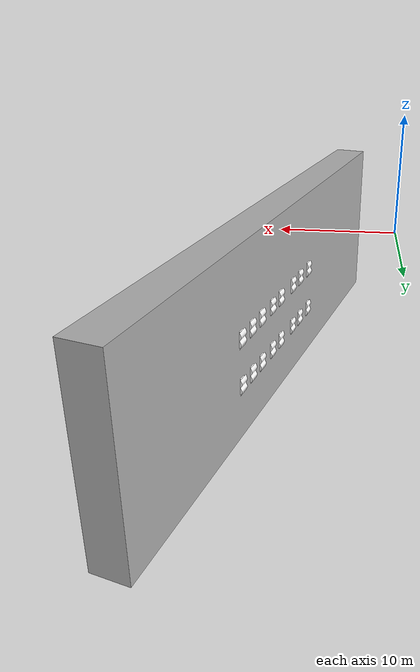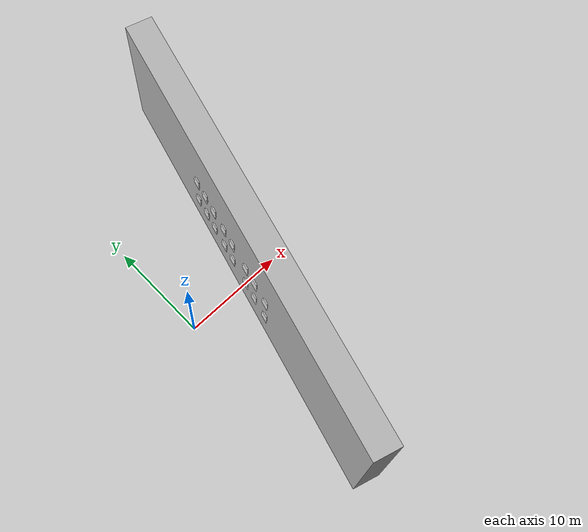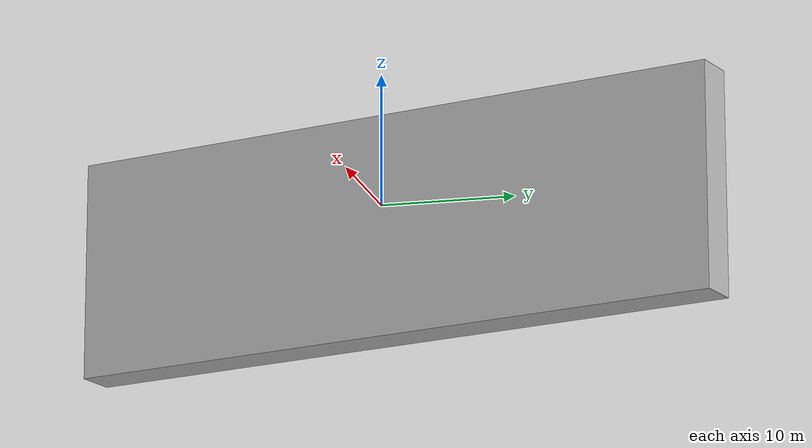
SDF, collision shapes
<?xml version="1.0" ?>
<!--Luis Blunschi 27.10.2025-->
<sdf version="1.6">
  <model name="harbor">
    <static>true</static>

    <link name="walls">

      <collision name="front_wall_collision">
        <pose>10.722990 3.746699 -5 0 0 -1.844678</pose>
        <geometry>
          <box>
            <size>50 3 16</size>
          </box>
        </geometry>
      </collision>
      <visual name="front_wall_visual">
        <pose>10.722990 3.746699 -5 0 0 -1.844678</pose>
        <geometry>
          <box>
            <size>50 2.98 16</size>
          </box>
        </geometry>
        <material>
          <ambient>0.7 0.7 0.7 1</ambient>
          <diffuse>0.7 0.7 0.7 1</diffuse>
        </material>
      </visual>

      <visual name="front_wall_texture">
        <pose>9.327034 4.138881 -5 0 0 -1.844678</pose>
        <geometry>
          <mesh>
            <uri>model://harbor/meshes/wall_visual.obj</uri>
          </mesh>
        </geometry>
        <material>
          <double_sided>true</double_sided>
          <ambient>1 1 1 1</ambient>
          <diffuse>1 1 1 1</diffuse>
          <specular>0.1 0.1 0.1 0.1</specular>
          <pbr>
            <metal>
              <albedo_map>model://harbor/materials/grass/Poliigon_GrassPatchyGround_4585_BaseColor.jpg</albedo_map>
              <normal_map>model://harbor/materials/grass/Poliigon_GrassPatchyGround_4585_Normal.png</normal_map>
              <roughness_map>model://harbor/materials/grass/Poliigon_GrassPatchyGround_4585_Roughness.jpg</roughness_map>
              <metalness_map>model://harbor/materials/grass/Poliigon_GrassPatchyGround_4585_Metallic.jpg</metalness_map>
              <ambient_occlusion_map>model://harbor/materials/grass/Poliigon_GrassPatchyGround_4585_AmbientOcclusion.jpg</ambient_occlusion_map>
              <roughness>0.9</roughness>
              <metalness>0.01</metalness>
            </metal>
          </pbr>
        </material>
      </visual>

    </link>
    <link name="inspection_elements">

      <!-- Element LBU 5.8 -->
      <collision name="inspection_element_58_collision">
        <pose>11.835702 13.253233 -5.000025 0 0 2.867711</pose>
        <geometry>
          <mesh>
            <uri>model://harbor/meshes/model.stl</uri>
            <scale>0.001 0.001 0.001</scale>
          </mesh>
        </geometry>
      </collision>
      <visual name="inspection_element_58_visual">
        <pose>11.835702 13.253233 -5.000025 1.5707 0 2.867711</pose>
        <geometry>
          <mesh>
            <uri>model://harbor/meshes/inspection.glb</uri>
            <scale>0.01 0.01 0.01</scale>
          </mesh>

        </geometry>
        <material>
          <double_sided>true</double_sided>
          <ambient>1 1 1 1</ambient>
          <diffuse>1 1 1 1</diffuse>
          <specular>0.1 0.1 0.1 0.1</specular>
          <pbr>
            <metal>
              <albedo_map>model://harbor/materials/grid_like/rusting-textured-metal_albedo.png</albedo_map>
              <normal_map>model://harbor/materials/grid_like/rusting-textured-metal_normal-dx.png</normal_map>
              <roughness_map>model://harbor/materials/grid_like/rusting-textured-metal_roughness.png</roughness_map>
              <metalness_map>model://harbor/materials/grid_like/rusting-textured-metal_metallic.png</metalness_map>
              <ambient_occlusion_map>model://harbor/materials/grid_like/rusting-textured-metal_ao.png</ambient_occlusion_map>
              <roughness>0.9</roughness>
              <metalness>0.01</metalness>
            </metal>
          </pbr>
        </material>

      </visual>

      <!-- Element LBU 5.13 -->
      <collision name="inspection_element_513_collision">
        <pose>11.835702 13.253233 -9 0 0 2.867711</pose>
        <geometry>
          <mesh>
            <uri>model://harbor/meshes/model.stl</uri>
            <scale>0.001 0.001 0.001</scale>
          </mesh>
        </geometry>
      </collision>
      <visual name="inspection_element_513_visual">
        <pose>11.835702 13.253233 -9 1.5707 0 2.867711</pose>
        <geometry>
          <mesh>
            <uri>model://harbor/meshes/inspection.glb</uri>
            <scale>0.01 0.01 0.01</scale>
          </mesh>

        </geometry>
        <material>
          <double_sided>true</double_sided>
          <ambient>1 1 1 1</ambient>
          <diffuse>1 1 1 1</diffuse>
          <specular>0.1 0.1 0.1 0.1</specular>
          <pbr>
            <metal>
              <albedo_map>model://harbor/materials/grid_like/rusting-textured-metal_albedo.png</albedo_map>
              <normal_map>model://harbor/materials/grid_like/rusting-textured-metal_normal-dx.png</normal_map>
              <roughness_map>model://harbor/materials/grid_like/rusting-textured-metal_roughness.png</roughness_map>
              <metalness_map>model://harbor/materials/grid_like/rusting-textured-metal_metallic.png</metalness_map>
              <ambient_occlusion_map>model://harbor/materials/grid_like/rusting-textured-metal_ao.png</ambient_occlusion_map>
              <roughness>0.9</roughness>
              <metalness>0.01</metalness>
            </metal>
          </pbr>
        </material>

      </visual>

      <!-- Element LBU 5.9 -->
      <collision name="inspection_element_59_collision">
        <pose>11.319732 11.416660 -5.000025 0 0 2.867711</pose>
        <geometry>
          <mesh>
            <uri>model://harbor/meshes/model.stl</uri>
            <scale>0.001 0.001 0.001</scale>
          </mesh>
        </geometry>
      </collision>
      <visual name="inspection_element_59_visual">
        <pose>11.319732 11.416660 -5.000025 1.5707 0 2.867711</pose>
        <geometry>
          <mesh>
            <uri>model://harbor/meshes/inspection.glb</uri>
            <scale>0.01 0.01 0.01</scale>
          </mesh>

        </geometry>
        <material>
          <double_sided>true</double_sided>
          <ambient>1 1 1 1</ambient>
          <diffuse>1 1 1 1</diffuse>
          <specular>0.1 0.1 0.1 0.1</specular>
          <pbr>
            <metal>
              <albedo_map>model://harbor/materials/grid_like/rusting-textured-metal_albedo.png</albedo_map>
              <normal_map>model://harbor/materials/grid_like/rusting-textured-metal_normal-dx.png</normal_map>
              <roughness_map>model://harbor/materials/grid_like/rusting-textured-metal_roughness.png</roughness_map>
              <metalness_map>model://harbor/materials/grid_like/rusting-textured-metal_metallic.png</metalness_map>
              <ambient_occlusion_map>model://harbor/materials/grid_like/rusting-textured-metal_ao.png</ambient_occlusion_map>
              <roughness>0.9</roughness>
              <metalness>0.01</metalness>
            </metal>
          </pbr>
        </material>
      </visual>

      <!-- Element 5.14 -->
      <collision name="inspection_element_514_collision">
        <pose>11.319732 11.416660 -9 0 0 2.867711</pose>
        <geometry>
          <mesh>
            <uri>model://harbor/meshes/model.stl</uri>
            <scale>0.001 0.001 0.001</scale>
          </mesh>
        </geometry>
      </collision>
      <visual name="inspection_element_514_visual">
        <pose>11.319732 11.416660 -9 1.5707 0 2.867711</pose>
        <geometry>
          <mesh>
            <uri>model://harbor/meshes/inspection.glb</uri>
            <scale>0.01 0.01 0.01</scale>
          </mesh>

        </geometry>
        <material>
          <double_sided>true</double_sided>
          <ambient>1 1 1 1</ambient>
          <diffuse>1 1 1 1</diffuse>
          <specular>0.1 0.1 0.1 0.1</specular>
          <pbr>
            <metal>
              <albedo_map>model://harbor/materials/grid_like/rusting-textured-metal_albedo.png</albedo_map>
              <normal_map>model://harbor/materials/grid_like/rusting-textured-metal_normal-dx.png</normal_map>
              <roughness_map>model://harbor/materials/grid_like/rusting-textured-metal_roughness.png</roughness_map>
              <metalness_map>model://harbor/materials/grid_like/rusting-textured-metal_metallic.png</metalness_map>
              <ambient_occlusion_map>model://harbor/materials/grid_like/rusting-textured-metal_ao.png</ambient_occlusion_map>
              <roughness>0.9</roughness>
              <metalness>0.01</metalness>
            </metal>
          </pbr>
        </material>
      </visual>

      <!-- Element LBU 5.10 -->
      <collision name="inspection_element_510_collision">
        <pose>10.803728 9.579964 -5.000025 0 0 2.867711</pose>
        <geometry>
          <mesh>
            <uri>model://harbor/meshes/model.stl</uri>
            <scale>0.001 0.001 0.001</scale>
          </mesh>
        </geometry>
      </collision>
      <visual name="inspection_element_510_visual">
        <pose>10.803728 9.579964 -5.000025 1.5707 0 2.867711</pose>
        <geometry>
          <mesh>
            <uri>model://harbor/meshes/inspection.glb</uri>
            <scale>0.01 0.01 0.01</scale>
          </mesh>

        </geometry>
        <material>
          <double_sided>true</double_sided>
          <ambient>1 1 1 1</ambient>
          <diffuse>1 1 1 1</diffuse>
          <specular>0.1 0.1 0.1 0.1</specular>
          <pbr>
            <metal>
              <albedo_map>model://harbor/materials/grid_like/rusting-textured-metal_albedo.png</albedo_map>
              <normal_map>model://harbor/materials/grid_like/rusting-textured-metal_normal-dx.png</normal_map>
              <roughness_map>model://harbor/materials/grid_like/rusting-textured-metal_roughness.png</roughness_map>
              <metalness_map>model://harbor/materials/grid_like/rusting-textured-metal_metallic.png</metalness_map>
              <ambient_occlusion_map>model://harbor/materials/grid_like/rusting-textured-metal_ao.png</ambient_occlusion_map>
              <roughness>0.9</roughness>
              <metalness>0.01</metalness>
            </metal>
          </pbr>
        </material>
      </visual>

      <!-- Element 5.15 -->
      <collision name="inspection_element_515_collision">
        <pose>10.803728 9.579964 -9 0 0 2.867711</pose>
        <geometry>
          <mesh>
            <uri>model://harbor/meshes/model.stl</uri>
            <scale>0.001 0.001 0.001</scale>
          </mesh>
        </geometry>
      </collision>
      <visual name="inspection_element_515_visual">
        <pose>10.803728 9.579964 -9 1.5707 0 2.867711</pose>
        <geometry>
          <mesh>
            <uri>model://harbor/meshes/inspection.glb</uri>
            <scale>0.01 0.01 0.01</scale>
          </mesh>

        </geometry>
        <material>
          <double_sided>true</double_sided>
          <ambient>1 1 1 1</ambient>
          <diffuse>1 1 1 1</diffuse>
          <specular>0.1 0.1 0.1 0.1</specular>
          <pbr>
            <metal>
              <albedo_map>model://harbor/materials/grid_like/rusting-textured-metal_albedo.png</albedo_map>
              <normal_map>model://harbor/materials/grid_like/rusting-textured-metal_normal-dx.png</normal_map>
              <roughness_map>model://harbor/materials/grid_like/rusting-textured-metal_roughness.png</roughness_map>
              <metalness_map>model://harbor/materials/grid_like/rusting-textured-metal_metallic.png</metalness_map>
              <ambient_occlusion_map>model://harbor/materials/grid_like/rusting-textured-metal_ao.png</ambient_occlusion_map>
              <roughness>0.9</roughness>
              <metalness>0.01</metalness>
            </metal>
          </pbr>
        </material>
      </visual>

      <!-- Element LBU 5.11 -->
      <collision name="inspection_element_511_collision">
        <pose>10.190416 7.396905 -5.000025 0 0 2.867711</pose>
        <geometry>
          <mesh>
            <uri>model://harbor/meshes/model.stl</uri>
            <scale>0.001 0.001 0.001</scale>
          </mesh>
        </geometry>
      </collision>
      <visual name="inspection_element_511_visual">
        <pose>10.190416 7.396905 -5.000025 1.5707 0 2.867711</pose>
        <geometry>
          <mesh>
            <uri>model://harbor/meshes/inspection.glb</uri>
            <scale>0.01 0.01 0.01</scale>
          </mesh>

        </geometry>
        <material>
          <double_sided>true</double_sided>
          <ambient>1 1 1 1</ambient>
          <diffuse>1 1 1 1</diffuse>
          <specular>0.1 0.1 0.1 0.1</specular>
          <pbr>
            <metal>
              <albedo_map>model://harbor/materials/grid_like/rusting-textured-metal_albedo.png</albedo_map>
              <normal_map>model://harbor/materials/grid_like/rusting-textured-metal_normal-dx.png</normal_map>
              <roughness_map>model://harbor/materials/grid_like/rusting-textured-metal_roughness.png</roughness_map>
              <metalness_map>model://harbor/materials/grid_like/rusting-textured-metal_metallic.png</metalness_map>
              <ambient_occlusion_map>model://harbor/materials/grid_like/rusting-textured-metal_ao.png</ambient_occlusion_map>
              <roughness>0.9</roughness>
              <metalness>0.01</metalness>
            </metal>
          </pbr>
        </material>
      </visual>

      <!-- Element 5.16 -->
      <collision name="inspection_element_516_collision">
        <pose>10.190416 7.396905 -9 0 0 2.867711</pose>
        <geometry>
          <mesh>
            <uri>model://harbor/meshes/model.stl</uri>
            <scale>0.001 0.001 0.001</scale>
          </mesh>
        </geometry>
      </collision>
      <visual name="inspection_element_516_visual">
        <pose>10.190416 7.396905 -9 1.5707 0 2.867711</pose>
        <geometry>
          <mesh>
            <uri>model://harbor/meshes/inspection.glb</uri>
            <scale>0.01 0.01 0.01</scale>
          </mesh>

        </geometry>
        <material>
          <double_sided>true</double_sided>
          <ambient>1 1 1 1</ambient>
          <diffuse>1 1 1 1</diffuse>
          <specular>0.1 0.1 0.1 0.1</specular>
          <pbr>
            <metal>
              <albedo_map>model://harbor/materials/grid_like/rusting-textured-metal_albedo.png</albedo_map>
              <normal_map>model://harbor/materials/grid_like/rusting-textured-metal_normal-dx.png</normal_map>
              <roughness_map>model://harbor/materials/grid_like/rusting-textured-metal_roughness.png</roughness_map>
              <metalness_map>model://harbor/materials/grid_like/rusting-textured-metal_metallic.png</metalness_map>
              <ambient_occlusion_map>model://harbor/materials/grid_like/rusting-textured-metal_ao.png</ambient_occlusion_map>
              <roughness>0.9</roughness>
              <metalness>0.01</metalness>
            </metal>
          </pbr>
        </material>
      </visual>

      <!-- Element LBU 5.12 -->
      <collision name="inspection_element_512_collision">
        <pose>9.674411 5.560207 -5.000025 0 0 2.867711</pose>
        <geometry>
          <mesh>
            <uri>model://harbor/meshes/model.stl</uri>
            <scale>0.001 0.001 0.001</scale>
          </mesh>
        </geometry>
      </collision>
      <visual name="inspection_element_512_visual">
        <pose>9.674411 5.560207 -5.000025 1.5707 0 2.867711</pose>
        <geometry>
          <mesh>
            <uri>model://harbor/meshes/inspection.glb</uri>
            <scale>0.01 0.01 0.01</scale>
          </mesh>

        </geometry>
        <material>
          <double_sided>true</double_sided>
          <ambient>1 1 1 1</ambient>
          <diffuse>1 1 1 1</diffuse>
          <specular>0.1 0.1 0.1 0.1</specular>
          <pbr>
            <metal>
              <albedo_map>model://harbor/materials/grid_like/rusting-textured-metal_albedo.png</albedo_map>
              <normal_map>model://harbor/materials/grid_like/rusting-textured-metal_normal-dx.png</normal_map>
              <roughness_map>model://harbor/materials/grid_like/rusting-textured-metal_roughness.png</roughness_map>
              <metalness_map>model://harbor/materials/grid_like/rusting-textured-metal_metallic.png</metalness_map>
              <ambient_occlusion_map>model://harbor/materials/grid_like/rusting-textured-metal_ao.png</ambient_occlusion_map>
              <roughness>0.9</roughness>
              <metalness>0.01</metalness>
            </metal>
          </pbr>
        </material>
      </visual>

      <!-- Element 5.17 -->
      <collision name="inspection_element_517_collision">
        <pose>9.674411 5.560207 -9 0 0 2.867711</pose>
        <geometry>
          <mesh>
            <uri>model://harbor/meshes/model.stl</uri>
            <scale>0.001 0.001 0.001</scale>
          </mesh>
        </geometry>
      </collision>
      <visual name="inspection_element_517_visual">
        <pose>9.674411 5.560207 -9 1.5707 0 2.867711</pose>
        <geometry>
          <mesh>
            <uri>model://harbor/meshes/inspection.glb</uri>
            <scale>0.01 0.01 0.01</scale>
          </mesh>

        </geometry>
        <material>
          <double_sided>true</double_sided>
          <ambient>1 1 1 1</ambient>
          <diffuse>1 1 1 1</diffuse>
          <specular>0.1 0.1 0.1 0.1</specular>
          <pbr>
            <metal>
              <albedo_map>model://harbor/materials/grid_like/rusting-textured-metal_albedo.png</albedo_map>
              <normal_map>model://harbor/materials/grid_like/rusting-textured-metal_normal-dx.png</normal_map>
              <roughness_map>model://harbor/materials/grid_like/rusting-textured-metal_roughness.png</roughness_map>
              <metalness_map>model://harbor/materials/grid_like/rusting-textured-metal_metallic.png</metalness_map>
              <ambient_occlusion_map>model://harbor/materials/grid_like/rusting-textured-metal_ao.png</ambient_occlusion_map>
              <roughness>0.9</roughness>
              <metalness>0.01</metalness>
            </metal>
          </pbr>
        </material>
      </visual>

      <!-- Element LBU 5.18 -->
      <collision name="inspection_element_518_collision">
        <pose>8.883419 2.744705 -5.000025 0 0 2.867711</pose>
        <geometry>
          <mesh>
            <uri>model://harbor/meshes/model.stl</uri>
            <scale>0.001 0.001 0.001</scale>
          </mesh>
        </geometry>
      </collision>
      <visual name="inspection_element_518_visual">
        <pose>8.883419 2.744705 -5.000025 1.5707 0 2.867711</pose>
        <geometry>
          <mesh>
            <uri>model://harbor/meshes/inspection.glb</uri>
            <scale>0.01 0.01 0.01</scale>
          </mesh>

        </geometry>
        <material>
          <double_sided>true</double_sided>
          <ambient>1 1 1 1</ambient>
          <diffuse>1 1 1 1</diffuse>
          <specular>0.1 0.1 0.1 0.1</specular>
          <pbr>
            <metal>
              <albedo_map>model://harbor/materials/grid_like/rusting-textured-metal_albedo.png</albedo_map>
              <normal_map>model://harbor/materials/grid_like/rusting-textured-metal_normal-dx.png</normal_map>
              <roughness_map>model://harbor/materials/grid_like/rusting-textured-metal_roughness.png</roughness_map>
              <metalness_map>model://harbor/materials/grid_like/rusting-textured-metal_metallic.png</metalness_map>
              <ambient_occlusion_map>model://harbor/materials/grid_like/rusting-textured-metal_ao.png</ambient_occlusion_map>
              <roughness>0.9</roughness>
              <metalness>0.01</metalness>
            </metal>
          </pbr>
        </material>
      </visual>

      <!-- Element 5.1 -->
      <collision name="inspection_element_51_collision">
        <pose>8.883419 2.744705 -9 0 0 2.867711</pose>
        <geometry>
          <mesh>
            <uri>model://harbor/meshes/model.stl</uri>
            <scale>0.001 0.001 0.001</scale>
          </mesh>
        </geometry>
      </collision>
      <visual name="inspection_element_51_visual">
        <pose>8.883419 2.744705 -9 1.5707 0 2.867711</pose>
        <geometry>
          <mesh>
            <uri>model://harbor/meshes/inspection.glb</uri>
            <scale>0.01 0.01 0.01</scale>
          </mesh>

        </geometry>
        <material>
          <double_sided>true</double_sided>
          <ambient>1 1 1 1</ambient>
          <diffuse>1 1 1 1</diffuse>
          <specular>0.1 0.1 0.1 0.1</specular>
          <pbr>
            <metal>
              <albedo_map>model://harbor/materials/grid_like/rusting-textured-metal_albedo.png</albedo_map>
              <normal_map>model://harbor/materials/grid_like/rusting-textured-metal_normal-dx.png</normal_map>
              <roughness_map>model://harbor/materials/grid_like/rusting-textured-metal_roughness.png</roughness_map>
              <metalness_map>model://harbor/materials/grid_like/rusting-textured-metal_metallic.png</metalness_map>
              <ambient_occlusion_map>model://harbor/materials/grid_like/rusting-textured-metal_ao.png</ambient_occlusion_map>
              <roughness>0.9</roughness>
              <metalness>0.01</metalness>
            </metal>
          </pbr>
        </material>
      </visual>

      <!-- Element LBU 5.19 -->
      <collision name="inspection_element_519_collision">
        <pose>8.367420 0.908029 -5.000025 0 0 2.867711</pose>
        <geometry>
          <mesh>
            <uri>model://harbor/meshes/model.stl</uri>
            <scale>0.001 0.001 0.001</scale>
          </mesh>
        </geometry>
      </collision>
      <visual name="inspection_element_519_visual">
        <pose>8.367420 0.908029 -5.000025 1.5707 0 2.867711</pose>
        <geometry>
          <mesh>
            <uri>model://harbor/meshes/inspection.glb</uri>
            <scale>0.01 0.01 0.01</scale>
          </mesh>

        </geometry>
        <material>
          <double_sided>true</double_sided>
          <ambient>1 1 1 1</ambient>
          <diffuse>1 1 1 1</diffuse>
          <specular>0.1 0.1 0.1 0.1</specular>
          <pbr>
            <metal>
              <albedo_map>model://harbor/materials/grid_like/rusting-textured-metal_albedo.png</albedo_map>
              <normal_map>model://harbor/materials/grid_like/rusting-textured-metal_normal-dx.png</normal_map>
              <roughness_map>model://harbor/materials/grid_like/rusting-textured-metal_roughness.png</roughness_map>
              <metalness_map>model://harbor/materials/grid_like/rusting-textured-metal_metallic.png</metalness_map>
              <ambient_occlusion_map>model://harbor/materials/grid_like/rusting-textured-metal_ao.png</ambient_occlusion_map>
              <roughness>0.9</roughness>
              <metalness>0.01</metalness>
            </metal>
          </pbr>
        </material>
      </visual>

      <!-- Element 5.2 -->
      <collision name="inspection_element_52_collision">
        <pose>8.367420 0.908029 -9 0 0 2.867711</pose>
        <geometry>
          <mesh>
            <uri>model://harbor/meshes/model.stl</uri>
            <scale>0.001 0.001 0.001</scale>
          </mesh>
        </geometry>
      </collision>
      <visual name="inspection_element_52_visual">
        <pose>8.367420 0.908029 -9 1.5707 0 2.867711</pose>
        <geometry>
          <mesh>
            <uri>model://harbor/meshes/inspection.glb</uri>
            <scale>0.01 0.01 0.01</scale>
          </mesh>

        </geometry>
        <material>
          <double_sided>true</double_sided>
          <ambient>1 1 1 1</ambient>
          <diffuse>1 1 1 1</diffuse>
          <specular>0.1 0.1 0.1 0.1</specular>
          <pbr>
            <metal>
              <albedo_map>model://harbor/materials/grid_like/rusting-textured-metal_albedo.png</albedo_map>
              <normal_map>model://harbor/materials/grid_like/rusting-textured-metal_normal-dx.png</normal_map>
              <roughness_map>model://harbor/materials/grid_like/rusting-textured-metal_roughness.png</roughness_map>
              <metalness_map>model://harbor/materials/grid_like/rusting-textured-metal_metallic.png</metalness_map>
              <ambient_occlusion_map>model://harbor/materials/grid_like/rusting-textured-metal_ao.png</ambient_occlusion_map>
              <roughness>0.9</roughness>
              <metalness>0.01</metalness>
            </metal>
          </pbr>
        </material>
      </visual>

      <!-- Element LBU 5.20 -->
      <collision name="inspection_element_520_collision">
        <pose>7.754102 -1.275052 -5.000025 0 0 2.867711</pose>
        <geometry>
          <mesh>
            <uri>model://harbor/meshes/model.stl</uri>
            <scale>0.001 0.001 0.001</scale>
          </mesh>
        </geometry>
      </collision>
      <visual name="inspection_element_520_visual">
        <pose>7.754102 -1.275052 -5.000025 1.5707 0 2.867711</pose>
        <geometry>
          <mesh>
            <uri>model://harbor/meshes/inspection.glb</uri>
            <scale>0.01 0.01 0.01</scale>
          </mesh>

        </geometry>
        <material>
          <double_sided>true</double_sided>
          <ambient>1 1 1 1</ambient>
          <diffuse>1 1 1 1</diffuse>
          <specular>0.1 0.1 0.1 0.1</specular>
          <pbr>
            <metal>
              <albedo_map>model://harbor/materials/grid_like/rusting-textured-metal_albedo.png</albedo_map>
              <normal_map>model://harbor/materials/grid_like/rusting-textured-metal_normal-dx.png</normal_map>
              <roughness_map>model://harbor/materials/grid_like/rusting-textured-metal_roughness.png</roughness_map>
              <metalness_map>model://harbor/materials/grid_like/rusting-textured-metal_metallic.png</metalness_map>
              <ambient_occlusion_map>model://harbor/materials/grid_like/rusting-textured-metal_ao.png</ambient_occlusion_map>
              <roughness>0.9</roughness>
              <metalness>0.01</metalness>
            </metal>
          </pbr>

        </material>
      </visual>

      <!-- Element 5.3 -->
      <collision name="inspection_element_53_collision">
        <pose>7.754102 -1.275052 -9 0 0 2.867711</pose>
        <geometry>
          <mesh>
            <uri>model://harbor/meshes/model.stl</uri>
            <scale>0.001 0.001 0.001</scale>
          </mesh>
        </geometry>
      </collision>
      <visual name="inspection_element_53_visual">
        <pose>7.754102 -1.275052 -9 1.5707 0 2.867711</pose>
        <geometry>
          <mesh>
            <uri>model://harbor/meshes/inspection.glb</uri>
            <scale>0.01 0.01 0.01</scale>
          </mesh>

        </geometry>
        <material>
          <double_sided>true</double_sided>
          <ambient>1 1 1 1</ambient>
          <diffuse>1 1 1 1</diffuse>
          <specular>0.1 0.1 0.1 0.1</specular>
          <pbr>
            <metal>
              <albedo_map>model://harbor/materials/grid_like/rusting-textured-metal_albedo.png</albedo_map>
              <normal_map>model://harbor/materials/grid_like/rusting-textured-metal_normal-dx.png</normal_map>
              <roughness_map>model://harbor/materials/grid_like/rusting-textured-metal_roughness.png</roughness_map>
              <metalness_map>model://harbor/materials/grid_like/rusting-textured-metal_metallic.png</metalness_map>
              <ambient_occlusion_map>model://harbor/materials/grid_like/rusting-textured-metal_ao.png</ambient_occlusion_map>
              <roughness>0.9</roughness>
              <metalness>0.01</metalness>
            </metal>
          </pbr>
        </material>
      </visual>
    </link>
  </model>
</sdf>
